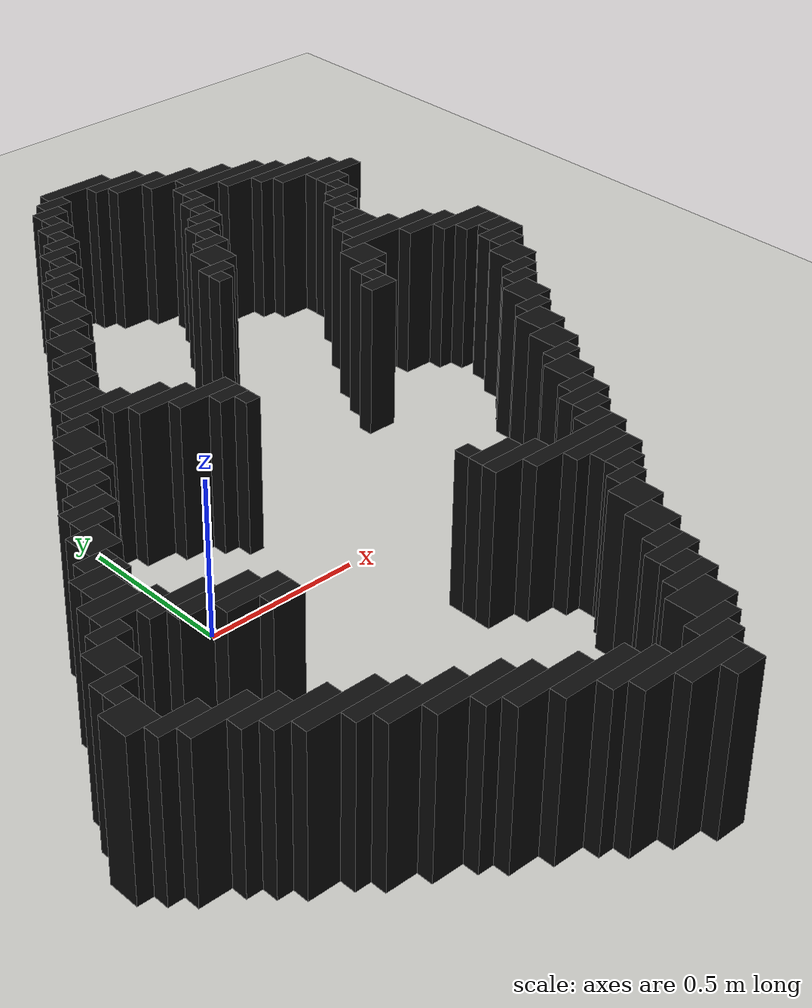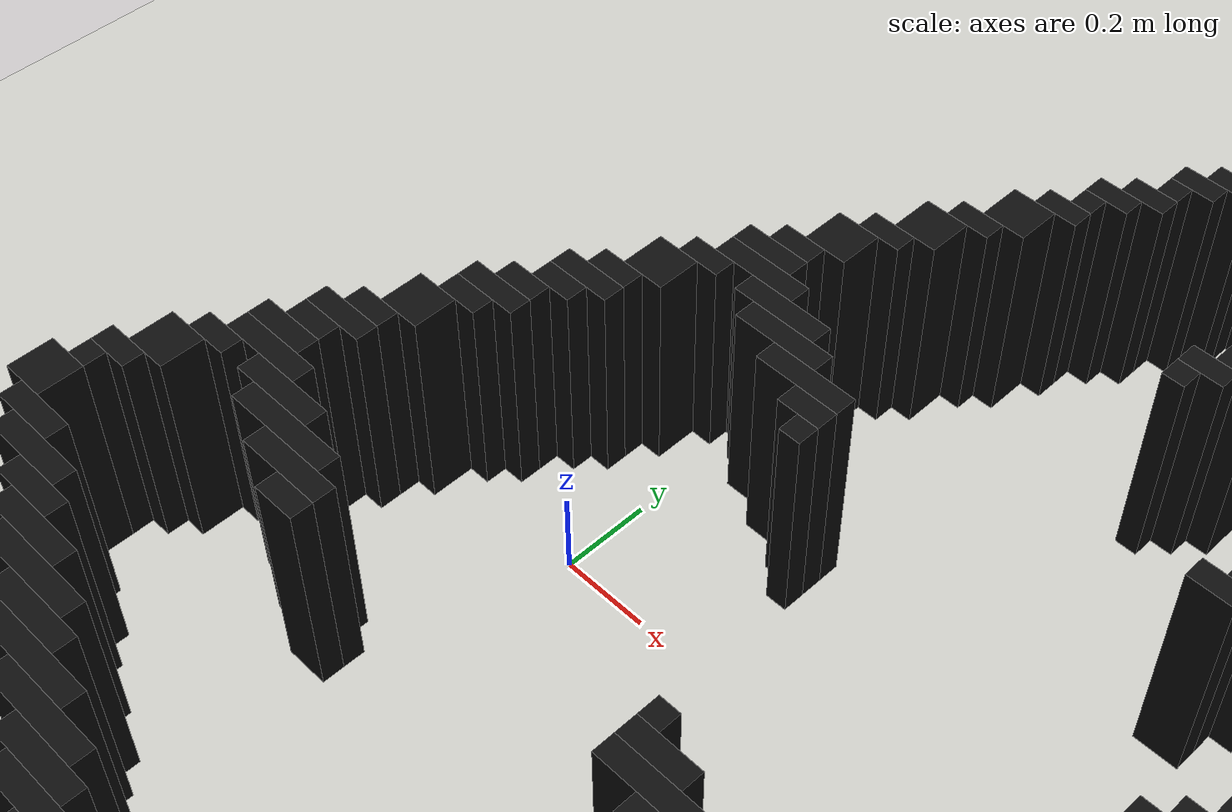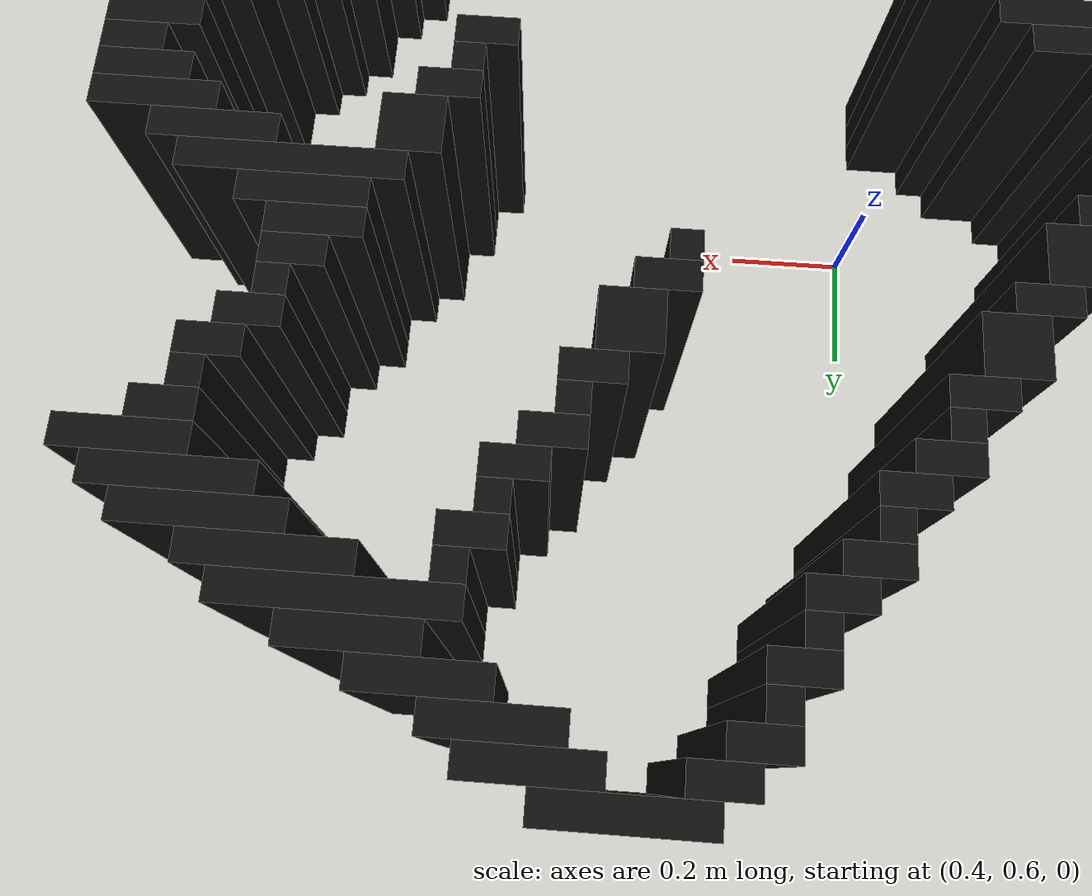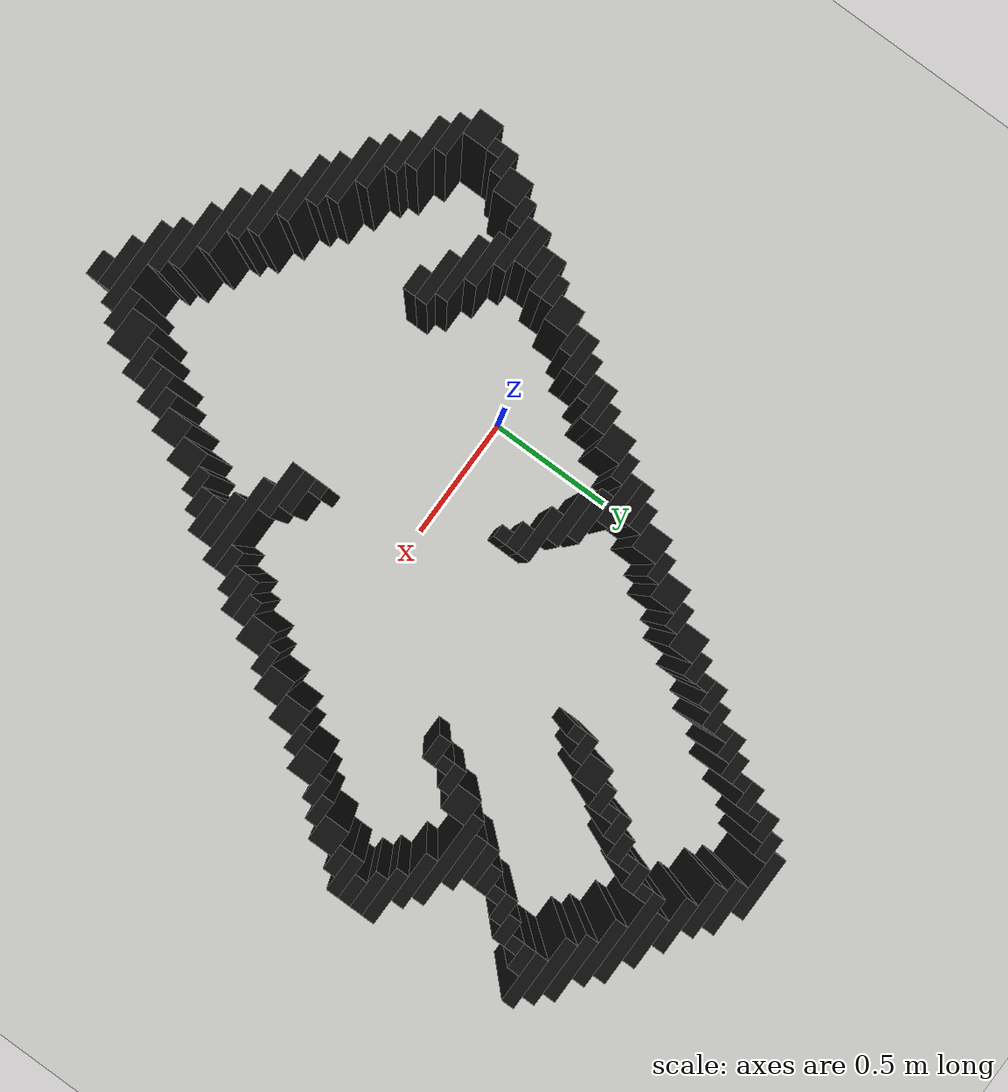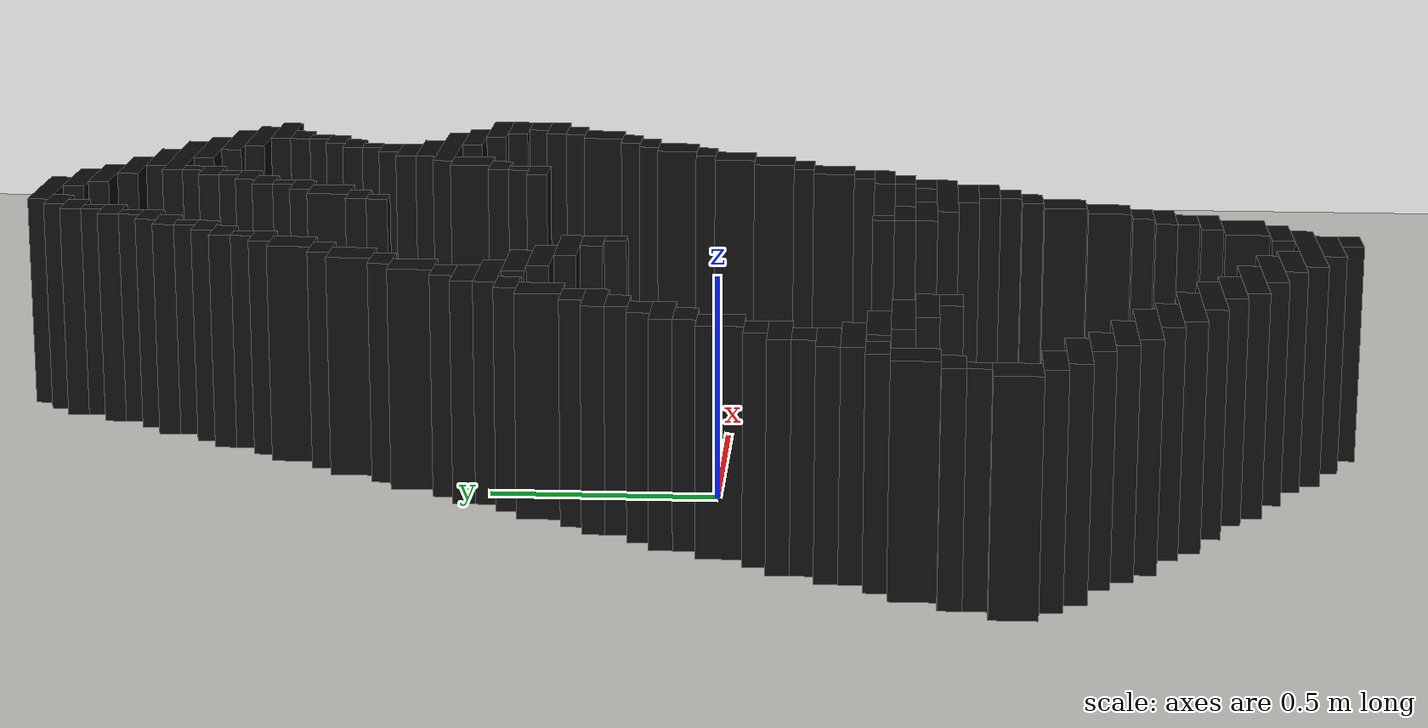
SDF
<sdf version="1.9">
 <world name="two_tb4_lab">
  <model name="ground_plane">
   <static>true</static>
   <link name="link">
    <collision name="collision">
     <geometry><plane><normal>0 0 1</normal><size>5 5</size></plane></geometry>
    </collision>
    <visual name="visual">
     <geometry><plane><normal>0 0 1</normal><size>5 5</size></plane></geometry>
     <material><ambient>0.78 0.78 0.76 1</ambient><diffuse>0.78 0.78 0.76 1</diffuse></material>
    </visual>
   </link>
  </model>
  <model name="lab_occupied_cells">
   <static>true</static>
   <link name="lab_occupied_cells_000">
    <pose>0.425 -1.400 0.250 0 0 0</pose>
    <collision name="collision"><geometry><box><size>0.100 0.050 0.500</size></box></geometry></collision>
    <visual name="visual">
     <geometry><box><size>0.100 0.050 0.500</size></box></geometry>
     <material><ambient>0.05 0.05 0.05 1</ambient><diffuse>0.05 0.05 0.05 1</diffuse></material>
    </visual>
   </link>
   <link name="lab_occupied_cells_001">
    <pose>0.375 -1.350 0.250 0 0 0</pose>
    <collision name="collision"><geometry><box><size>0.200 0.050 0.500</size></box></geometry></collision>
    <visual name="visual">
     <geometry><box><size>0.200 0.050 0.500</size></box></geometry>
     <material><ambient>0.05 0.05 0.05 1</ambient><diffuse>0.05 0.05 0.05 1</diffuse></material>
    </visual>
   </link>
   <link name="lab_occupied_cells_002">
    <pose>0.350 -1.300 0.250 0 0 0</pose>
    <collision name="collision"><geometry><box><size>0.350 0.050 0.500</size></box></geometry></collision>
    <visual name="visual">
     <geometry><box><size>0.350 0.050 0.500</size></box></geometry>
     <material><ambient>0.05 0.05 0.05 1</ambient><diffuse>0.05 0.05 0.05 1</diffuse></material>
    </visual>
   </link>
   <link name="lab_occupied_cells_003">
    <pose>0.225 -1.250 0.250 0 0 0</pose>
    <collision name="collision"><geometry><box><size>0.200 0.050 0.500</size></box></geometry></collision>
    <visual name="visual">
     <geometry><box><size>0.200 0.050 0.500</size></box></geometry>
     <material><ambient>0.05 0.05 0.05 1</ambient><diffuse>0.05 0.05 0.05 1</diffuse></material>
    </visual>
   </link>
   <link name="lab_occupied_cells_004">
    <pose>0.500 -1.250 0.250 0 0 0</pose>
    <collision name="collision"><geometry><box><size>0.150 0.050 0.500</size></box></geometry></collision>
    <visual name="visual">
     <geometry><box><size>0.150 0.050 0.500</size></box></geometry>
     <material><ambient>0.05 0.05 0.05 1</ambient><diffuse>0.05 0.05 0.05 1</diffuse></material>
    </visual>
   </link>
   <link name="lab_occupied_cells_005">
    <pose>0.150 -1.200 0.250 0 0 0</pose>
    <collision name="collision"><geometry><box><size>0.250 0.050 0.500</size></box></geometry></collision>
    <visual name="visual">
     <geometry><box><size>0.250 0.050 0.500</size></box></geometry>
     <material><ambient>0.05 0.05 0.05 1</ambient><diffuse>0.05 0.05 0.05 1</diffuse></material>
    </visual>
   </link>
   <link name="lab_occupied_cells_006">
    <pose>0.550 -1.175 0.250 0 0 0</pose>
    <collision name="collision"><geometry><box><size>0.150 0.100 0.500</size></box></geometry></collision>
    <visual name="visual">
     <geometry><box><size>0.150 0.100 0.500</size></box></geometry>
     <material><ambient>0.05 0.05 0.05 1</ambient><diffuse>0.05 0.05 0.05 1</diffuse></material>
    </visual>
   </link>
   <link name="lab_occupied_cells_007">
    <pose>0.050 -1.150 0.250 0 0 0</pose>
    <collision name="collision"><geometry><box><size>0.250 0.050 0.500</size></box></geometry></collision>
    <visual name="visual">
     <geometry><box><size>0.250 0.050 0.500</size></box></geometry>
     <material><ambient>0.05 0.05 0.05 1</ambient><diffuse>0.05 0.05 0.05 1</diffuse></material>
    </visual>
   </link>
   <link name="lab_occupied_cells_008">
    <pose>-0.025 -1.100 0.250 0 0 0</pose>
    <collision name="collision"><geometry><box><size>0.200 0.050 0.500</size></box></geometry></collision>
    <visual name="visual">
     <geometry><box><size>0.200 0.050 0.500</size></box></geometry>
     <material><ambient>0.05 0.05 0.05 1</ambient><diffuse>0.05 0.05 0.05 1</diffuse></material>
    </visual>
   </link>
   <link name="lab_occupied_cells_009">
    <pose>0.600 -1.100 0.250 0 0 0</pose>
    <collision name="collision"><geometry><box><size>0.150 0.050 0.500</size></box></geometry></collision>
    <visual name="visual">
     <geometry><box><size>0.150 0.050 0.500</size></box></geometry>
     <material><ambient>0.05 0.05 0.05 1</ambient><diffuse>0.05 0.05 0.05 1</diffuse></material>
    </visual>
   </link>
   <link name="lab_occupied_cells_010">
    <pose>-0.100 -1.050 0.250 0 0 0</pose>
    <collision name="collision"><geometry><box><size>0.250 0.050 0.500</size></box></geometry></collision>
    <visual name="visual">
     <geometry><box><size>0.250 0.050 0.500</size></box></geometry>
     <material><ambient>0.05 0.05 0.05 1</ambient><diffuse>0.05 0.05 0.05 1</diffuse></material>
    </visual>
   </link>
   <link name="lab_occupied_cells_011">
    <pose>0.625 -1.050 0.250 0 0 0</pose>
    <collision name="collision"><geometry><box><size>0.100 0.050 0.500</size></box></geometry></collision>
    <visual name="visual">
     <geometry><box><size>0.100 0.050 0.500</size></box></geometry>
     <material><ambient>0.05 0.05 0.05 1</ambient><diffuse>0.05 0.05 0.05 1</diffuse></material>
    </visual>
   </link>
   <link name="lab_occupied_cells_012">
    <pose>-0.200 -1.000 0.250 0 0 0</pose>
    <collision name="collision"><geometry><box><size>0.250 0.050 0.500</size></box></geometry></collision>
    <visual name="visual">
     <geometry><box><size>0.250 0.050 0.500</size></box></geometry>
     <material><ambient>0.05 0.05 0.05 1</ambient><diffuse>0.05 0.05 0.05 1</diffuse></material>
    </visual>
   </link>
   <link name="lab_occupied_cells_013">
    <pose>0.650 -1.000 0.250 0 0 0</pose>
    <collision name="collision"><geometry><box><size>0.150 0.050 0.500</size></box></geometry></collision>
    <visual name="visual">
     <geometry><box><size>0.150 0.050 0.500</size></box></geometry>
     <material><ambient>0.05 0.05 0.05 1</ambient><diffuse>0.05 0.05 0.05 1</diffuse></material>
    </visual>
   </link>
   <link name="lab_occupied_cells_014">
    <pose>-0.275 -0.950 0.250 0 0 0</pose>
    <collision name="collision"><geometry><box><size>0.200 0.050 0.500</size></box></geometry></collision>
    <visual name="visual">
     <geometry><box><size>0.200 0.050 0.500</size></box></geometry>
     <material><ambient>0.05 0.05 0.05 1</ambient><diffuse>0.05 0.05 0.05 1</diffuse></material>
    </visual>
   </link>
   <link name="lab_occupied_cells_015">
    <pose>0.675 -0.950 0.250 0 0 0</pose>
    <collision name="collision"><geometry><box><size>0.100 0.050 0.500</size></box></geometry></collision>
    <visual name="visual">
     <geometry><box><size>0.100 0.050 0.500</size></box></geometry>
     <material><ambient>0.05 0.05 0.05 1</ambient><diffuse>0.05 0.05 0.05 1</diffuse></material>
    </visual>
   </link>
   <link name="lab_occupied_cells_016">
    <pose>-0.350 -0.900 0.250 0 0 0</pose>
    <collision name="collision"><geometry><box><size>0.250 0.050 0.500</size></box></geometry></collision>
    <visual name="visual">
     <geometry><box><size>0.250 0.050 0.500</size></box></geometry>
     <material><ambient>0.05 0.05 0.05 1</ambient><diffuse>0.05 0.05 0.05 1</diffuse></material>
    </visual>
   </link>
   <link name="lab_occupied_cells_017">
    <pose>0.725 -0.875 0.250 0 0 0</pose>
    <collision name="collision"><geometry><box><size>0.100 0.100 0.500</size></box></geometry></collision>
    <visual name="visual">
     <geometry><box><size>0.100 0.100 0.500</size></box></geometry>
     <material><ambient>0.05 0.05 0.05 1</ambient><diffuse>0.05 0.05 0.05 1</diffuse></material>
    </visual>
   </link>
   <link name="lab_occupied_cells_018">
    <pose>-0.425 -0.850 0.250 0 0 0</pose>
    <collision name="collision"><geometry><box><size>0.200 0.050 0.500</size></box></geometry></collision>
    <visual name="visual">
     <geometry><box><size>0.200 0.050 0.500</size></box></geometry>
     <material><ambient>0.05 0.05 0.05 1</ambient><diffuse>0.05 0.05 0.05 1</diffuse></material>
    </visual>
   </link>
   <link name="lab_occupied_cells_019">
    <pose>-0.500 -0.800 0.250 0 0 0</pose>
    <collision name="collision"><geometry><box><size>0.150 0.050 0.500</size></box></geometry></collision>
    <visual name="visual">
     <geometry><box><size>0.150 0.050 0.500</size></box></geometry>
     <material><ambient>0.05 0.05 0.05 1</ambient><diffuse>0.05 0.05 0.05 1</diffuse></material>
    </visual>
   </link>
   <link name="lab_occupied_cells_020">
    <pose>0.775 -0.775 0.250 0 0 0</pose>
    <collision name="collision"><geometry><box><size>0.100 0.100 0.500</size></box></geometry></collision>
    <visual name="visual">
     <geometry><box><size>0.100 0.100 0.500</size></box></geometry>
     <material><ambient>0.05 0.05 0.05 1</ambient><diffuse>0.05 0.05 0.05 1</diffuse></material>
    </visual>
   </link>
   <link name="lab_occupied_cells_021">
    <pose>-0.575 -0.750 0.250 0 0 0</pose>
    <collision name="collision"><geometry><box><size>0.200 0.050 0.500</size></box></geometry></collision>
    <visual name="visual">
     <geometry><box><size>0.200 0.050 0.500</size></box></geometry>
     <material><ambient>0.05 0.05 0.05 1</ambient><diffuse>0.05 0.05 0.05 1</diffuse></material>
    </visual>
   </link>
   <link name="lab_occupied_cells_022">
    <pose>-0.650 -0.700 0.250 0 0 0</pose>
    <collision name="collision"><geometry><box><size>0.150 0.050 0.500</size></box></geometry></collision>
    <visual name="visual">
     <geometry><box><size>0.150 0.050 0.500</size></box></geometry>
     <material><ambient>0.05 0.05 0.05 1</ambient><diffuse>0.05 0.05 0.05 1</diffuse></material>
    </visual>
   </link>
   <link name="lab_occupied_cells_023">
    <pose>0.825 -0.700 0.250 0 0 0</pose>
    <collision name="collision"><geometry><box><size>0.100 0.050 0.500</size></box></geometry></collision>
    <visual name="visual">
     <geometry><box><size>0.100 0.050 0.500</size></box></geometry>
     <material><ambient>0.05 0.05 0.05 1</ambient><diffuse>0.05 0.05 0.05 1</diffuse></material>
    </visual>
   </link>
   <link name="lab_occupied_cells_024">
    <pose>0.875 -0.650 0.250 0 0 0</pose>
    <collision name="collision"><geometry><box><size>0.100 0.050 0.500</size></box></geometry></collision>
    <visual name="visual">
     <geometry><box><size>0.100 0.050 0.500</size></box></geometry>
     <material><ambient>0.05 0.05 0.05 1</ambient><diffuse>0.05 0.05 0.05 1</diffuse></material>
    </visual>
   </link>
   <link name="lab_occupied_cells_025">
    <pose>-0.725 -0.625 0.250 0 0 0</pose>
    <collision name="collision"><geometry><box><size>0.100 0.100 0.500</size></box></geometry></collision>
    <visual name="visual">
     <geometry><box><size>0.100 0.100 0.500</size></box></geometry>
     <material><ambient>0.05 0.05 0.05 1</ambient><diffuse>0.05 0.05 0.05 1</diffuse></material>
    </visual>
   </link>
   <link name="lab_occupied_cells_026">
    <pose>0.900 -0.600 0.250 0 0 0</pose>
    <collision name="collision"><geometry><box><size>0.150 0.050 0.500</size></box></geometry></collision>
    <visual name="visual">
     <geometry><box><size>0.150 0.050 0.500</size></box></geometry>
     <material><ambient>0.05 0.05 0.05 1</ambient><diffuse>0.05 0.05 0.05 1</diffuse></material>
    </visual>
   </link>
   <link name="lab_occupied_cells_027">
    <pose>-0.700 -0.550 0.250 0 0 0</pose>
    <collision name="collision"><geometry><box><size>0.050 0.050 0.500</size></box></geometry></collision>
    <visual name="visual">
     <geometry><box><size>0.050 0.050 0.500</size></box></geometry>
     <material><ambient>0.05 0.05 0.05 1</ambient><diffuse>0.05 0.05 0.05 1</diffuse></material>
    </visual>
   </link>
   <link name="lab_occupied_cells_028">
    <pose>0.875 -0.550 0.250 0 0 0</pose>
    <collision name="collision"><geometry><box><size>0.200 0.050 0.500</size></box></geometry></collision>
    <visual name="visual">
     <geometry><box><size>0.200 0.050 0.500</size></box></geometry>
     <material><ambient>0.05 0.05 0.05 1</ambient><diffuse>0.05 0.05 0.05 1</diffuse></material>
    </visual>
   </link>
   <link name="lab_occupied_cells_029">
    <pose>-0.675 -0.500 0.250 0 0 0</pose>
    <collision name="collision"><geometry><box><size>0.100 0.050 0.500</size></box></geometry></collision>
    <visual name="visual">
     <geometry><box><size>0.100 0.050 0.500</size></box></geometry>
     <material><ambient>0.05 0.05 0.05 1</ambient><diffuse>0.05 0.05 0.05 1</diffuse></material>
    </visual>
   </link>
   <link name="lab_occupied_cells_030">
    <pose>-0.175 -0.500 0.250 0 0 0</pose>
    <collision name="collision"><geometry><box><size>0.100 0.050 0.500</size></box></geometry></collision>
    <visual name="visual">
     <geometry><box><size>0.100 0.050 0.500</size></box></geometry>
     <material><ambient>0.05 0.05 0.05 1</ambient><diffuse>0.05 0.05 0.05 1</diffuse></material>
    </visual>
   </link>
   <link name="lab_occupied_cells_031">
    <pose>0.850 -0.500 0.250 0 0 0</pose>
    <collision name="collision"><geometry><box><size>0.350 0.050 0.500</size></box></geometry></collision>
    <visual name="visual">
     <geometry><box><size>0.350 0.050 0.500</size></box></geometry>
     <material><ambient>0.05 0.05 0.05 1</ambient><diffuse>0.05 0.05 0.05 1</diffuse></material>
    </visual>
   </link>
   <link name="lab_occupied_cells_032">
    <pose>-0.225 -0.450 0.250 0 0 0</pose>
    <collision name="collision"><geometry><box><size>0.200 0.050 0.500</size></box></geometry></collision>
    <visual name="visual">
     <geometry><box><size>0.200 0.050 0.500</size></box></geometry>
     <material><ambient>0.05 0.05 0.05 1</ambient><diffuse>0.05 0.05 0.05 1</diffuse></material>
    </visual>
   </link>
   <link name="lab_occupied_cells_033">
    <pose>0.675 -0.450 0.250 0 0 0</pose>
    <collision name="collision"><geometry><box><size>0.200 0.050 0.500</size></box></geometry></collision>
    <visual name="visual">
     <geometry><box><size>0.200 0.050 0.500</size></box></geometry>
     <material><ambient>0.05 0.05 0.05 1</ambient><diffuse>0.05 0.05 0.05 1</diffuse></material>
    </visual>
   </link>
   <link name="lab_occupied_cells_034">
    <pose>0.975 -0.450 0.250 0 0 0</pose>
    <collision name="collision"><geometry><box><size>0.100 0.050 0.500</size></box></geometry></collision>
    <visual name="visual">
     <geometry><box><size>0.100 0.050 0.500</size></box></geometry>
     <material><ambient>0.05 0.05 0.05 1</ambient><diffuse>0.05 0.05 0.05 1</diffuse></material>
    </visual>
   </link>
   <link name="lab_occupied_cells_035">
    <pose>-0.625 -0.425 0.250 0 0 0</pose>
    <collision name="collision"><geometry><box><size>0.100 0.100 0.500</size></box></geometry></collision>
    <visual name="visual">
     <geometry><box><size>0.100 0.100 0.500</size></box></geometry>
     <material><ambient>0.05 0.05 0.05 1</ambient><diffuse>0.05 0.05 0.05 1</diffuse></material>
    </visual>
   </link>
   <link name="lab_occupied_cells_036">
    <pose>-0.300 -0.400 0.250 0 0 0</pose>
    <collision name="collision"><geometry><box><size>0.250 0.050 0.500</size></box></geometry></collision>
    <visual name="visual">
     <geometry><box><size>0.250 0.050 0.500</size></box></geometry>
     <material><ambient>0.05 0.05 0.05 1</ambient><diffuse>0.05 0.05 0.05 1</diffuse></material>
    </visual>
   </link>
   <link name="lab_occupied_cells_037">
    <pose>0.650 -0.400 0.250 0 0 0</pose>
    <collision name="collision"><geometry><box><size>0.150 0.050 0.500</size></box></geometry></collision>
    <visual name="visual">
     <geometry><box><size>0.150 0.050 0.500</size></box></geometry>
     <material><ambient>0.05 0.05 0.05 1</ambient><diffuse>0.05 0.05 0.05 1</diffuse></material>
    </visual>
   </link>
   <link name="lab_occupied_cells_038">
    <pose>1.025 -0.400 0.250 0 0 0</pose>
    <collision name="collision"><geometry><box><size>0.100 0.050 0.500</size></box></geometry></collision>
    <visual name="visual">
     <geometry><box><size>0.100 0.050 0.500</size></box></geometry>
     <material><ambient>0.05 0.05 0.05 1</ambient><diffuse>0.05 0.05 0.05 1</diffuse></material>
    </visual>
   </link>
   <link name="lab_occupied_cells_039">
    <pose>-0.575 -0.350 0.250 0 0 0</pose>
    <collision name="collision"><geometry><box><size>0.100 0.050 0.500</size></box></geometry></collision>
    <visual name="visual">
     <geometry><box><size>0.100 0.050 0.500</size></box></geometry>
     <material><ambient>0.05 0.05 0.05 1</ambient><diffuse>0.05 0.05 0.05 1</diffuse></material>
    </visual>
   </link>
   <link name="lab_occupied_cells_040">
    <pose>-0.375 -0.350 0.250 0 0 0</pose>
    <collision name="collision"><geometry><box><size>0.200 0.050 0.500</size></box></geometry></collision>
    <visual name="visual">
     <geometry><box><size>0.200 0.050 0.500</size></box></geometry>
     <material><ambient>0.05 0.05 0.05 1</ambient><diffuse>0.05 0.05 0.05 1</diffuse></material>
    </visual>
   </link>
   <link name="lab_occupied_cells_041">
    <pose>0.600 -0.350 0.250 0 0 0</pose>
    <collision name="collision"><geometry><box><size>0.050 0.050 0.500</size></box></geometry></collision>
    <visual name="visual">
     <geometry><box><size>0.050 0.050 0.500</size></box></geometry>
     <material><ambient>0.05 0.05 0.05 1</ambient><diffuse>0.05 0.05 0.05 1</diffuse></material>
    </visual>
   </link>
   <link name="lab_occupied_cells_042">
    <pose>1.050 -0.350 0.250 0 0 0</pose>
    <collision name="collision"><geometry><box><size>0.150 0.050 0.500</size></box></geometry></collision>
    <visual name="visual">
     <geometry><box><size>0.150 0.050 0.500</size></box></geometry>
     <material><ambient>0.05 0.05 0.05 1</ambient><diffuse>0.05 0.05 0.05 1</diffuse></material>
    </visual>
   </link>
   <link name="lab_occupied_cells_043">
    <pose>-0.475 -0.300 0.250 0 0 0</pose>
    <collision name="collision"><geometry><box><size>0.200 0.050 0.500</size></box></geometry></collision>
    <visual name="visual">
     <geometry><box><size>0.200 0.050 0.500</size></box></geometry>
     <material><ambient>0.05 0.05 0.05 1</ambient><diffuse>0.05 0.05 0.05 1</diffuse></material>
    </visual>
   </link>
   <link name="lab_occupied_cells_044">
    <pose>1.075 -0.300 0.250 0 0 0</pose>
    <collision name="collision"><geometry><box><size>0.100 0.050 0.500</size></box></geometry></collision>
    <visual name="visual">
     <geometry><box><size>0.100 0.050 0.500</size></box></geometry>
     <material><ambient>0.05 0.05 0.05 1</ambient><diffuse>0.05 0.05 0.05 1</diffuse></material>
    </visual>
   </link>
   <link name="lab_occupied_cells_045">
    <pose>-0.500 -0.250 0.250 0 0 0</pose>
    <collision name="collision"><geometry><box><size>0.150 0.050 0.500</size></box></geometry></collision>
    <visual name="visual">
     <geometry><box><size>0.150 0.050 0.500</size></box></geometry>
     <material><ambient>0.05 0.05 0.05 1</ambient><diffuse>0.05 0.05 0.05 1</diffuse></material>
    </visual>
   </link>
   <link name="lab_occupied_cells_046">
    <pose>1.125 -0.225 0.250 0 0 0</pose>
    <collision name="collision"><geometry><box><size>0.100 0.100 0.500</size></box></geometry></collision>
    <visual name="visual">
     <geometry><box><size>0.100 0.100 0.500</size></box></geometry>
     <material><ambient>0.05 0.05 0.05 1</ambient><diffuse>0.05 0.05 0.05 1</diffuse></material>
    </visual>
   </link>
   <link name="lab_occupied_cells_047">
    <pose>-0.475 -0.200 0.250 0 0 0</pose>
    <collision name="collision"><geometry><box><size>0.100 0.050 0.500</size></box></geometry></collision>
    <visual name="visual">
     <geometry><box><size>0.100 0.050 0.500</size></box></geometry>
     <material><ambient>0.05 0.05 0.05 1</ambient><diffuse>0.05 0.05 0.05 1</diffuse></material>
    </visual>
   </link>
   <link name="lab_occupied_cells_048">
    <pose>-0.450 -0.150 0.250 0 0 0</pose>
    <collision name="collision"><geometry><box><size>0.150 0.050 0.500</size></box></geometry></collision>
    <visual name="visual">
     <geometry><box><size>0.150 0.050 0.500</size></box></geometry>
     <material><ambient>0.05 0.05 0.05 1</ambient><diffuse>0.05 0.05 0.05 1</diffuse></material>
    </visual>
   </link>
   <link name="lab_occupied_cells_049">
    <pose>1.175 -0.150 0.250 0 0 0</pose>
    <collision name="collision"><geometry><box><size>0.100 0.050 0.500</size></box></geometry></collision>
    <visual name="visual">
     <geometry><box><size>0.100 0.050 0.500</size></box></geometry>
     <material><ambient>0.05 0.05 0.05 1</ambient><diffuse>0.05 0.05 0.05 1</diffuse></material>
    </visual>
   </link>
   <link name="lab_occupied_cells_050">
    <pose>-0.425 -0.100 0.250 0 0 0</pose>
    <collision name="collision"><geometry><box><size>0.100 0.050 0.500</size></box></geometry></collision>
    <visual name="visual">
     <geometry><box><size>0.100 0.050 0.500</size></box></geometry>
     <material><ambient>0.05 0.05 0.05 1</ambient><diffuse>0.05 0.05 0.05 1</diffuse></material>
    </visual>
   </link>
   <link name="lab_occupied_cells_051">
    <pose>1.225 -0.075 0.250 0 0 0</pose>
    <collision name="collision"><geometry><box><size>0.100 0.100 0.500</size></box></geometry></collision>
    <visual name="visual">
     <geometry><box><size>0.100 0.100 0.500</size></box></geometry>
     <material><ambient>0.05 0.05 0.05 1</ambient><diffuse>0.05 0.05 0.05 1</diffuse></material>
    </visual>
   </link>
   <link name="lab_occupied_cells_052">
    <pose>-0.375 -0.025 0.250 0 0 0</pose>
    <collision name="collision"><geometry><box><size>0.100 0.100 0.500</size></box></geometry></collision>
    <visual name="visual">
     <geometry><box><size>0.100 0.100 0.500</size></box></geometry>
     <material><ambient>0.05 0.05 0.05 1</ambient><diffuse>0.05 0.05 0.05 1</diffuse></material>
    </visual>
   </link>
   <link name="lab_occupied_cells_053">
    <pose>1.275 0.025 0.250 0 0 0</pose>
    <collision name="collision"><geometry><box><size>0.100 0.100 0.500</size></box></geometry></collision>
    <visual name="visual">
     <geometry><box><size>0.100 0.100 0.500</size></box></geometry>
     <material><ambient>0.05 0.05 0.05 1</ambient><diffuse>0.05 0.05 0.05 1</diffuse></material>
    </visual>
   </link>
   <link name="lab_occupied_cells_054">
    <pose>-0.325 0.050 0.250 0 0 0</pose>
    <collision name="collision"><geometry><box><size>0.100 0.050 0.500</size></box></geometry></collision>
    <visual name="visual">
     <geometry><box><size>0.100 0.050 0.500</size></box></geometry>
     <material><ambient>0.05 0.05 0.05 1</ambient><diffuse>0.05 0.05 0.05 1</diffuse></material>
    </visual>
   </link>
   <link name="lab_occupied_cells_055">
    <pose>-0.300 0.100 0.250 0 0 0</pose>
    <collision name="collision"><geometry><box><size>0.150 0.050 0.500</size></box></geometry></collision>
    <visual name="visual">
     <geometry><box><size>0.150 0.050 0.500</size></box></geometry>
     <material><ambient>0.05 0.05 0.05 1</ambient><diffuse>0.05 0.05 0.05 1</diffuse></material>
    </visual>
   </link>
   <link name="lab_occupied_cells_056">
    <pose>1.325 0.100 0.250 0 0 0</pose>
    <collision name="collision"><geometry><box><size>0.100 0.050 0.500</size></box></geometry></collision>
    <visual name="visual">
     <geometry><box><size>0.100 0.050 0.500</size></box></geometry>
     <material><ambient>0.05 0.05 0.05 1</ambient><diffuse>0.05 0.05 0.05 1</diffuse></material>
    </visual>
   </link>
   <link name="lab_occupied_cells_057">
    <pose>-0.275 0.150 0.250 0 0 0</pose>
    <collision name="collision"><geometry><box><size>0.100 0.050 0.500</size></box></geometry></collision>
    <visual name="visual">
     <geometry><box><size>0.100 0.050 0.500</size></box></geometry>
     <material><ambient>0.05 0.05 0.05 1</ambient><diffuse>0.05 0.05 0.05 1</diffuse></material>
    </visual>
   </link>
   <link name="lab_occupied_cells_058">
    <pose>1.375 0.175 0.250 0 0 0</pose>
    <collision name="collision"><geometry><box><size>0.100 0.100 0.500</size></box></geometry></collision>
    <visual name="visual">
     <geometry><box><size>0.100 0.100 0.500</size></box></geometry>
     <material><ambient>0.05 0.05 0.05 1</ambient><diffuse>0.05 0.05 0.05 1</diffuse></material>
    </visual>
   </link>
   <link name="lab_occupied_cells_059">
    <pose>-0.225 0.200 0.250 0 0 0</pose>
    <collision name="collision"><geometry><box><size>0.100 0.050 0.500</size></box></geometry></collision>
    <visual name="visual">
     <geometry><box><size>0.100 0.050 0.500</size></box></geometry>
     <material><ambient>0.05 0.05 0.05 1</ambient><diffuse>0.05 0.05 0.05 1</diffuse></material>
    </visual>
   </link>
   <link name="lab_occupied_cells_060">
    <pose>-0.200 0.250 0.250 0 0 0</pose>
    <collision name="collision"><geometry><box><size>0.150 0.050 0.500</size></box></geometry></collision>
    <visual name="visual">
     <geometry><box><size>0.150 0.050 0.500</size></box></geometry>
     <material><ambient>0.05 0.05 0.05 1</ambient><diffuse>0.05 0.05 0.05 1</diffuse></material>
    </visual>
   </link>
   <link name="lab_occupied_cells_061">
    <pose>0.350 0.250 0.250 0 0 0</pose>
    <collision name="collision"><geometry><box><size>0.050 0.050 0.500</size></box></geometry></collision>
    <visual name="visual">
     <geometry><box><size>0.050 0.050 0.500</size></box></geometry>
     <material><ambient>0.05 0.05 0.05 1</ambient><diffuse>0.05 0.05 0.05 1</diffuse></material>
    </visual>
   </link>
   <link name="lab_occupied_cells_062">
    <pose>1.425 0.250 0.250 0 0 0</pose>
    <collision name="collision"><geometry><box><size>0.100 0.050 0.500</size></box></geometry></collision>
    <visual name="visual">
     <geometry><box><size>0.100 0.050 0.500</size></box></geometry>
     <material><ambient>0.05 0.05 0.05 1</ambient><diffuse>0.05 0.05 0.05 1</diffuse></material>
    </visual>
   </link>
   <link name="lab_occupied_cells_063">
    <pose>-0.175 0.300 0.250 0 0 0</pose>
    <collision name="collision"><geometry><box><size>0.100 0.050 0.500</size></box></geometry></collision>
    <visual name="visual">
     <geometry><box><size>0.100 0.050 0.500</size></box></geometry>
     <material><ambient>0.05 0.05 0.05 1</ambient><diffuse>0.05 0.05 0.05 1</diffuse></material>
    </visual>
   </link>
   <link name="lab_occupied_cells_064">
    <pose>0.325 0.300 0.250 0 0 0</pose>
    <collision name="collision"><geometry><box><size>0.100 0.050 0.500</size></box></geometry></collision>
    <visual name="visual">
     <geometry><box><size>0.100 0.050 0.500</size></box></geometry>
     <material><ambient>0.05 0.05 0.05 1</ambient><diffuse>0.05 0.05 0.05 1</diffuse></material>
    </visual>
   </link>
   <link name="lab_occupied_cells_065">
    <pose>1.475 0.300 0.250 0 0 0</pose>
    <collision name="collision"><geometry><box><size>0.100 0.050 0.500</size></box></geometry></collision>
    <visual name="visual">
     <geometry><box><size>0.100 0.050 0.500</size></box></geometry>
     <material><ambient>0.05 0.05 0.05 1</ambient><diffuse>0.05 0.05 0.05 1</diffuse></material>
    </visual>
   </link>
   <link name="lab_occupied_cells_066">
    <pose>0.275 0.350 0.250 0 0 0</pose>
    <collision name="collision"><geometry><box><size>0.200 0.050 0.500</size></box></geometry></collision>
    <visual name="visual">
     <geometry><box><size>0.200 0.050 0.500</size></box></geometry>
     <material><ambient>0.05 0.05 0.05 1</ambient><diffuse>0.05 0.05 0.05 1</diffuse></material>
    </visual>
   </link>
   <link name="lab_occupied_cells_067">
    <pose>-0.125 0.375 0.250 0 0 0</pose>
    <collision name="collision"><geometry><box><size>0.100 0.100 0.500</size></box></geometry></collision>
    <visual name="visual">
     <geometry><box><size>0.100 0.100 0.500</size></box></geometry>
     <material><ambient>0.05 0.05 0.05 1</ambient><diffuse>0.05 0.05 0.05 1</diffuse></material>
    </visual>
   </link>
   <link name="lab_occupied_cells_068">
    <pose>1.525 0.375 0.250 0 0 0</pose>
    <collision name="collision"><geometry><box><size>0.100 0.100 0.500</size></box></geometry></collision>
    <visual name="visual">
     <geometry><box><size>0.100 0.100 0.500</size></box></geometry>
     <material><ambient>0.05 0.05 0.05 1</ambient><diffuse>0.05 0.05 0.05 1</diffuse></material>
    </visual>
   </link>
   <link name="lab_occupied_cells_069">
    <pose>0.175 0.400 0.250 0 0 0</pose>
    <collision name="collision"><geometry><box><size>0.200 0.050 0.500</size></box></geometry></collision>
    <visual name="visual">
     <geometry><box><size>0.200 0.050 0.500</size></box></geometry>
     <material><ambient>0.05 0.05 0.05 1</ambient><diffuse>0.05 0.05 0.05 1</diffuse></material>
    </visual>
   </link>
   <link name="lab_occupied_cells_070">
    <pose>-0.075 0.450 0.250 0 0 0</pose>
    <collision name="collision"><geometry><box><size>0.100 0.050 0.500</size></box></geometry></collision>
    <visual name="visual">
     <geometry><box><size>0.100 0.050 0.500</size></box></geometry>
     <material><ambient>0.05 0.05 0.05 1</ambient><diffuse>0.05 0.05 0.05 1</diffuse></material>
    </visual>
   </link>
   <link name="lab_occupied_cells_071">
    <pose>0.125 0.450 0.250 0 0 0</pose>
    <collision name="collision"><geometry><box><size>0.200 0.050 0.500</size></box></geometry></collision>
    <visual name="visual">
     <geometry><box><size>0.200 0.050 0.500</size></box></geometry>
     <material><ambient>0.05 0.05 0.05 1</ambient><diffuse>0.05 0.05 0.05 1</diffuse></material>
    </visual>
   </link>
   <link name="lab_occupied_cells_072">
    <pose>1.575 0.450 0.250 0 0 0</pose>
    <collision name="collision"><geometry><box><size>0.100 0.050 0.500</size></box></geometry></collision>
    <visual name="visual">
     <geometry><box><size>0.100 0.050 0.500</size></box></geometry>
     <material><ambient>0.05 0.05 0.05 1</ambient><diffuse>0.05 0.05 0.05 1</diffuse></material>
    </visual>
   </link>
   <link name="lab_occupied_cells_073">
    <pose>0.025 0.500 0.250 0 0 0</pose>
    <collision name="collision"><geometry><box><size>0.200 0.050 0.500</size></box></geometry></collision>
    <visual name="visual">
     <geometry><box><size>0.200 0.050 0.500</size></box></geometry>
     <material><ambient>0.05 0.05 0.05 1</ambient><diffuse>0.05 0.05 0.05 1</diffuse></material>
    </visual>
   </link>
   <link name="lab_occupied_cells_074">
    <pose>1.075 0.500 0.250 0 0 0</pose>
    <collision name="collision"><geometry><box><size>0.100 0.050 0.500</size></box></geometry></collision>
    <visual name="visual">
     <geometry><box><size>0.100 0.050 0.500</size></box></geometry>
     <material><ambient>0.05 0.05 0.05 1</ambient><diffuse>0.05 0.05 0.05 1</diffuse></material>
    </visual>
   </link>
   <link name="lab_occupied_cells_075">
    <pose>1.600 0.500 0.250 0 0 0</pose>
    <collision name="collision"><geometry><box><size>0.150 0.050 0.500</size></box></geometry></collision>
    <visual name="visual">
     <geometry><box><size>0.150 0.050 0.500</size></box></geometry>
     <material><ambient>0.05 0.05 0.05 1</ambient><diffuse>0.05 0.05 0.05 1</diffuse></material>
    </visual>
   </link>
   <link name="lab_occupied_cells_076">
    <pose>0.000 0.550 0.250 0 0 0</pose>
    <collision name="collision"><geometry><box><size>0.150 0.050 0.500</size></box></geometry></collision>
    <visual name="visual">
     <geometry><box><size>0.150 0.050 0.500</size></box></geometry>
     <material><ambient>0.05 0.05 0.05 1</ambient><diffuse>0.05 0.05 0.05 1</diffuse></material>
    </visual>
   </link>
   <link name="lab_occupied_cells_077">
    <pose>1.100 0.550 0.250 0 0 0</pose>
    <collision name="collision"><geometry><box><size>0.050 0.050 0.500</size></box></geometry></collision>
    <visual name="visual">
     <geometry><box><size>0.050 0.050 0.500</size></box></geometry>
     <material><ambient>0.05 0.05 0.05 1</ambient><diffuse>0.05 0.05 0.05 1</diffuse></material>
    </visual>
   </link>
   <link name="lab_occupied_cells_078">
    <pose>1.625 0.550 0.250 0 0 0</pose>
    <collision name="collision"><geometry><box><size>0.100 0.050 0.500</size></box></geometry></collision>
    <visual name="visual">
     <geometry><box><size>0.100 0.050 0.500</size></box></geometry>
     <material><ambient>0.05 0.05 0.05 1</ambient><diffuse>0.05 0.05 0.05 1</diffuse></material>
    </visual>
   </link>
   <link name="lab_occupied_cells_079">
    <pose>0.025 0.600 0.250 0 0 0</pose>
    <collision name="collision"><geometry><box><size>0.100 0.050 0.500</size></box></geometry></collision>
    <visual name="visual">
     <geometry><box><size>0.100 0.050 0.500</size></box></geometry>
     <material><ambient>0.05 0.05 0.05 1</ambient><diffuse>0.05 0.05 0.05 1</diffuse></material>
    </visual>
   </link>
   <link name="lab_occupied_cells_080">
    <pose>1.125 0.600 0.250 0 0 0</pose>
    <collision name="collision"><geometry><box><size>0.100 0.050 0.500</size></box></geometry></collision>
    <visual name="visual">
     <geometry><box><size>0.100 0.050 0.500</size></box></geometry>
     <material><ambient>0.05 0.05 0.05 1</ambient><diffuse>0.05 0.05 0.05 1</diffuse></material>
    </visual>
   </link>
   <link name="lab_occupied_cells_081">
    <pose>1.600 0.600 0.250 0 0 0</pose>
    <collision name="collision"><geometry><box><size>0.150 0.050 0.500</size></box></geometry></collision>
    <visual name="visual">
     <geometry><box><size>0.150 0.050 0.500</size></box></geometry>
     <material><ambient>0.05 0.05 0.05 1</ambient><diffuse>0.05 0.05 0.05 1</diffuse></material>
    </visual>
   </link>
   <link name="lab_occupied_cells_082">
    <pose>1.575 0.650 0.250 0 0 0</pose>
    <collision name="collision"><geometry><box><size>0.200 0.050 0.500</size></box></geometry></collision>
    <visual name="visual">
     <geometry><box><size>0.200 0.050 0.500</size></box></geometry>
     <material><ambient>0.05 0.05 0.05 1</ambient><diffuse>0.05 0.05 0.05 1</diffuse></material>
    </visual>
   </link>
   <link name="lab_occupied_cells_083">
    <pose>0.075 0.675 0.250 0 0 0</pose>
    <collision name="collision"><geometry><box><size>0.100 0.100 0.500</size></box></geometry></collision>
    <visual name="visual">
     <geometry><box><size>0.100 0.100 0.500</size></box></geometry>
     <material><ambient>0.05 0.05 0.05 1</ambient><diffuse>0.05 0.05 0.05 1</diffuse></material>
    </visual>
   </link>
   <link name="lab_occupied_cells_084">
    <pose>1.175 0.675 0.250 0 0 0</pose>
    <collision name="collision"><geometry><box><size>0.100 0.100 0.500</size></box></geometry></collision>
    <visual name="visual">
     <geometry><box><size>0.100 0.100 0.500</size></box></geometry>
     <material><ambient>0.05 0.05 0.05 1</ambient><diffuse>0.05 0.05 0.05 1</diffuse></material>
    </visual>
   </link>
   <link name="lab_occupied_cells_085">
    <pose>1.475 0.700 0.250 0 0 0</pose>
    <collision name="collision"><geometry><box><size>0.200 0.050 0.500</size></box></geometry></collision>
    <visual name="visual">
     <geometry><box><size>0.200 0.050 0.500</size></box></geometry>
     <material><ambient>0.05 0.05 0.05 1</ambient><diffuse>0.05 0.05 0.05 1</diffuse></material>
    </visual>
   </link>
   <link name="lab_occupied_cells_086">
    <pose>0.125 0.750 0.250 0 0 0</pose>
    <collision name="collision"><geometry><box><size>0.100 0.050 0.500</size></box></geometry></collision>
    <visual name="visual">
     <geometry><box><size>0.100 0.050 0.500</size></box></geometry>
     <material><ambient>0.05 0.05 0.05 1</ambient><diffuse>0.05 0.05 0.05 1</diffuse></material>
    </visual>
   </link>
   <link name="lab_occupied_cells_087">
    <pose>1.350 0.750 0.250 0 0 0</pose>
    <collision name="collision"><geometry><box><size>0.350 0.050 0.500</size></box></geometry></collision>
    <visual name="visual">
     <geometry><box><size>0.350 0.050 0.500</size></box></geometry>
     <material><ambient>0.05 0.05 0.05 1</ambient><diffuse>0.05 0.05 0.05 1</diffuse></material>
    </visual>
   </link>
   <link name="lab_occupied_cells_088">
    <pose>1.325 0.800 0.250 0 0 0</pose>
    <collision name="collision"><geometry><box><size>0.200 0.050 0.500</size></box></geometry></collision>
    <visual name="visual">
     <geometry><box><size>0.200 0.050 0.500</size></box></geometry>
     <material><ambient>0.05 0.05 0.05 1</ambient><diffuse>0.05 0.05 0.05 1</diffuse></material>
    </visual>
   </link>
   <link name="lab_occupied_cells_089">
    <pose>0.175 0.825 0.250 0 0 0</pose>
    <collision name="collision"><geometry><box><size>0.100 0.100 0.500</size></box></geometry></collision>
    <visual name="visual">
     <geometry><box><size>0.100 0.100 0.500</size></box></geometry>
     <material><ambient>0.05 0.05 0.05 1</ambient><diffuse>0.05 0.05 0.05 1</diffuse></material>
    </visual>
   </link>
   <link name="lab_occupied_cells_090">
    <pose>0.750 0.850 0.250 0 0 0</pose>
    <collision name="collision"><geometry><box><size>0.050 0.050 0.500</size></box></geometry></collision>
    <visual name="visual">
     <geometry><box><size>0.050 0.050 0.500</size></box></geometry>
     <material><ambient>0.05 0.05 0.05 1</ambient><diffuse>0.05 0.05 0.05 1</diffuse></material>
    </visual>
   </link>
   <link name="lab_occupied_cells_091">
    <pose>1.300 0.850 0.250 0 0 0</pose>
    <collision name="collision"><geometry><box><size>0.150 0.050 0.500</size></box></geometry></collision>
    <visual name="visual">
     <geometry><box><size>0.150 0.050 0.500</size></box></geometry>
     <material><ambient>0.05 0.05 0.05 1</ambient><diffuse>0.05 0.05 0.05 1</diffuse></material>
    </visual>
   </link>
   <link name="lab_occupied_cells_092">
    <pose>0.225 0.900 0.250 0 0 0</pose>
    <collision name="collision"><geometry><box><size>0.100 0.050 0.500</size></box></geometry></collision>
    <visual name="visual">
     <geometry><box><size>0.100 0.050 0.500</size></box></geometry>
     <material><ambient>0.05 0.05 0.05 1</ambient><diffuse>0.05 0.05 0.05 1</diffuse></material>
    </visual>
   </link>
   <link name="lab_occupied_cells_093">
    <pose>0.775 0.900 0.250 0 0 0</pose>
    <collision name="collision"><geometry><box><size>0.100 0.050 0.500</size></box></geometry></collision>
    <visual name="visual">
     <geometry><box><size>0.100 0.050 0.500</size></box></geometry>
     <material><ambient>0.05 0.05 0.05 1</ambient><diffuse>0.05 0.05 0.05 1</diffuse></material>
    </visual>
   </link>
   <link name="lab_occupied_cells_094">
    <pose>1.325 0.900 0.250 0 0 0</pose>
    <collision name="collision"><geometry><box><size>0.100 0.050 0.500</size></box></geometry></collision>
    <visual name="visual">
     <geometry><box><size>0.100 0.050 0.500</size></box></geometry>
     <material><ambient>0.05 0.05 0.05 1</ambient><diffuse>0.05 0.05 0.05 1</diffuse></material>
    </visual>
   </link>
   <link name="lab_occupied_cells_095">
    <pose>1.350 0.950 0.250 0 0 0</pose>
    <collision name="collision"><geometry><box><size>0.050 0.050 0.500</size></box></geometry></collision>
    <visual name="visual">
     <geometry><box><size>0.050 0.050 0.500</size></box></geometry>
     <material><ambient>0.05 0.05 0.05 1</ambient><diffuse>0.05 0.05 0.05 1</diffuse></material>
    </visual>
   </link>
   <link name="lab_occupied_cells_096">
    <pose>0.275 0.975 0.250 0 0 0</pose>
    <collision name="collision"><geometry><box><size>0.100 0.100 0.500</size></box></geometry></collision>
    <visual name="visual">
     <geometry><box><size>0.100 0.100 0.500</size></box></geometry>
     <material><ambient>0.05 0.05 0.05 1</ambient><diffuse>0.05 0.05 0.05 1</diffuse></material>
    </visual>
   </link>
   <link name="lab_occupied_cells_097">
    <pose>0.825 0.975 0.250 0 0 0</pose>
    <collision name="collision"><geometry><box><size>0.100 0.100 0.500</size></box></geometry></collision>
    <visual name="visual">
     <geometry><box><size>0.100 0.100 0.500</size></box></geometry>
     <material><ambient>0.05 0.05 0.05 1</ambient><diffuse>0.05 0.05 0.05 1</diffuse></material>
    </visual>
   </link>
   <link name="lab_occupied_cells_098">
    <pose>1.375 1.000 0.250 0 0 0</pose>
    <collision name="collision"><geometry><box><size>0.100 0.050 0.500</size></box></geometry></collision>
    <visual name="visual">
     <geometry><box><size>0.100 0.050 0.500</size></box></geometry>
     <material><ambient>0.05 0.05 0.05 1</ambient><diffuse>0.05 0.05 0.05 1</diffuse></material>
    </visual>
   </link>
   <link name="lab_occupied_cells_099">
    <pose>0.325 1.050 0.250 0 0 0</pose>
    <collision name="collision"><geometry><box><size>0.100 0.050 0.500</size></box></geometry></collision>
    <visual name="visual">
     <geometry><box><size>0.100 0.050 0.500</size></box></geometry>
     <material><ambient>0.05 0.05 0.05 1</ambient><diffuse>0.05 0.05 0.05 1</diffuse></material>
    </visual>
   </link>
   <link name="lab_occupied_cells_100">
    <pose>0.875 1.050 0.250 0 0 0</pose>
    <collision name="collision"><geometry><box><size>0.100 0.050 0.500</size></box></geometry></collision>
    <visual name="visual">
     <geometry><box><size>0.100 0.050 0.500</size></box></geometry>
     <material><ambient>0.05 0.05 0.05 1</ambient><diffuse>0.05 0.05 0.05 1</diffuse></material>
    </visual>
   </link>
   <link name="lab_occupied_cells_101">
    <pose>1.425 1.050 0.250 0 0 0</pose>
    <collision name="collision"><geometry><box><size>0.100 0.050 0.500</size></box></geometry></collision>
    <visual name="visual">
     <geometry><box><size>0.100 0.050 0.500</size></box></geometry>
     <material><ambient>0.05 0.05 0.05 1</ambient><diffuse>0.05 0.05 0.05 1</diffuse></material>
    </visual>
   </link>
   <link name="lab_occupied_cells_102">
    <pose>0.350 1.100 0.250 0 0 0</pose>
    <collision name="collision"><geometry><box><size>0.050 0.050 0.500</size></box></geometry></collision>
    <visual name="visual">
     <geometry><box><size>0.050 0.050 0.500</size></box></geometry>
     <material><ambient>0.05 0.05 0.05 1</ambient><diffuse>0.05 0.05 0.05 1</diffuse></material>
    </visual>
   </link>
   <link name="lab_occupied_cells_103">
    <pose>0.900 1.100 0.250 0 0 0</pose>
    <collision name="collision"><geometry><box><size>0.050 0.050 0.500</size></box></geometry></collision>
    <visual name="visual">
     <geometry><box><size>0.050 0.050 0.500</size></box></geometry>
     <material><ambient>0.05 0.05 0.05 1</ambient><diffuse>0.05 0.05 0.05 1</diffuse></material>
    </visual>
   </link>
   <link name="lab_occupied_cells_104">
    <pose>1.450 1.100 0.250 0 0 0</pose>
    <collision name="collision"><geometry><box><size>0.050 0.050 0.500</size></box></geometry></collision>
    <visual name="visual">
     <geometry><box><size>0.050 0.050 0.500</size></box></geometry>
     <material><ambient>0.05 0.05 0.05 1</ambient><diffuse>0.05 0.05 0.05 1</diffuse></material>
    </visual>
   </link>
   <link name="lab_occupied_cells_105">
    <pose>0.375 1.150 0.250 0 0 0</pose>
    <collision name="collision"><geometry><box><size>0.100 0.050 0.500</size></box></geometry></collision>
    <visual name="visual">
     <geometry><box><size>0.100 0.050 0.500</size></box></geometry>
     <material><ambient>0.05 0.05 0.05 1</ambient><diffuse>0.05 0.05 0.05 1</diffuse></material>
    </visual>
   </link>
   <link name="lab_occupied_cells_106">
    <pose>0.925 1.150 0.250 0 0 0</pose>
    <collision name="collision"><geometry><box><size>0.100 0.050 0.500</size></box></geometry></collision>
    <visual name="visual">
     <geometry><box><size>0.100 0.050 0.500</size></box></geometry>
     <material><ambient>0.05 0.05 0.05 1</ambient><diffuse>0.05 0.05 0.05 1</diffuse></material>
    </visual>
   </link>
   <link name="lab_occupied_cells_107">
    <pose>1.475 1.150 0.250 0 0 0</pose>
    <collision name="collision"><geometry><box><size>0.100 0.050 0.500</size></box></geometry></collision>
    <visual name="visual">
     <geometry><box><size>0.100 0.050 0.500</size></box></geometry>
     <material><ambient>0.05 0.05 0.05 1</ambient><diffuse>0.05 0.05 0.05 1</diffuse></material>
    </visual>
   </link>
   <link name="lab_occupied_cells_108">
    <pose>0.425 1.200 0.250 0 0 0</pose>
    <collision name="collision"><geometry><box><size>0.100 0.050 0.500</size></box></geometry></collision>
    <visual name="visual">
     <geometry><box><size>0.100 0.050 0.500</size></box></geometry>
     <material><ambient>0.05 0.05 0.05 1</ambient><diffuse>0.05 0.05 0.05 1</diffuse></material>
    </visual>
   </link>
   <link name="lab_occupied_cells_109">
    <pose>0.975 1.200 0.250 0 0 0</pose>
    <collision name="collision"><geometry><box><size>0.100 0.050 0.500</size></box></geometry></collision>
    <visual name="visual">
     <geometry><box><size>0.100 0.050 0.500</size></box></geometry>
     <material><ambient>0.05 0.05 0.05 1</ambient><diffuse>0.05 0.05 0.05 1</diffuse></material>
    </visual>
   </link>
   <link name="lab_occupied_cells_110">
    <pose>1.525 1.200 0.250 0 0 0</pose>
    <collision name="collision"><geometry><box><size>0.200 0.050 0.500</size></box></geometry></collision>
    <visual name="visual">
     <geometry><box><size>0.200 0.050 0.500</size></box></geometry>
     <material><ambient>0.05 0.05 0.05 1</ambient><diffuse>0.05 0.05 0.05 1</diffuse></material>
    </visual>
   </link>
   <link name="lab_occupied_cells_111">
    <pose>0.450 1.250 0.250 0 0 0</pose>
    <collision name="collision"><geometry><box><size>0.050 0.050 0.500</size></box></geometry></collision>
    <visual name="visual">
     <geometry><box><size>0.050 0.050 0.500</size></box></geometry>
     <material><ambient>0.05 0.05 0.05 1</ambient><diffuse>0.05 0.05 0.05 1</diffuse></material>
    </visual>
   </link>
   <link name="lab_occupied_cells_112">
    <pose>1.000 1.250 0.250 0 0 0</pose>
    <collision name="collision"><geometry><box><size>0.050 0.050 0.500</size></box></geometry></collision>
    <visual name="visual">
     <geometry><box><size>0.050 0.050 0.500</size></box></geometry>
     <material><ambient>0.05 0.05 0.05 1</ambient><diffuse>0.05 0.05 0.05 1</diffuse></material>
    </visual>
   </link>
   <link name="lab_occupied_cells_113">
    <pose>1.450 1.250 0.250 0 0 0</pose>
    <collision name="collision"><geometry><box><size>0.250 0.050 0.500</size></box></geometry></collision>
    <visual name="visual">
     <geometry><box><size>0.250 0.050 0.500</size></box></geometry>
     <material><ambient>0.05 0.05 0.05 1</ambient><diffuse>0.05 0.05 0.05 1</diffuse></material>
    </visual>
   </link>
   <link name="lab_occupied_cells_114">
    <pose>0.475 1.300 0.250 0 0 0</pose>
    <collision name="collision"><geometry><box><size>0.100 0.050 0.500</size></box></geometry></collision>
    <visual name="visual">
     <geometry><box><size>0.100 0.050 0.500</size></box></geometry>
     <material><ambient>0.05 0.05 0.05 1</ambient><diffuse>0.05 0.05 0.05 1</diffuse></material>
    </visual>
   </link>
   <link name="lab_occupied_cells_115">
    <pose>1.025 1.300 0.250 0 0 0</pose>
    <collision name="collision"><geometry><box><size>0.100 0.050 0.500</size></box></geometry></collision>
    <visual name="visual">
     <geometry><box><size>0.100 0.050 0.500</size></box></geometry>
     <material><ambient>0.05 0.05 0.05 1</ambient><diffuse>0.05 0.05 0.05 1</diffuse></material>
    </visual>
   </link>
   <link name="lab_occupied_cells_116">
    <pose>1.400 1.300 0.250 0 0 0</pose>
    <collision name="collision"><geometry><box><size>0.250 0.050 0.500</size></box></geometry></collision>
    <visual name="visual">
     <geometry><box><size>0.250 0.050 0.500</size></box></geometry>
     <material><ambient>0.05 0.05 0.05 1</ambient><diffuse>0.05 0.05 0.05 1</diffuse></material>
    </visual>
   </link>
   <link name="lab_occupied_cells_117">
    <pose>0.525 1.350 0.250 0 0 0</pose>
    <collision name="collision"><geometry><box><size>0.100 0.050 0.500</size></box></geometry></collision>
    <visual name="visual">
     <geometry><box><size>0.100 0.050 0.500</size></box></geometry>
     <material><ambient>0.05 0.05 0.05 1</ambient><diffuse>0.05 0.05 0.05 1</diffuse></material>
    </visual>
   </link>
   <link name="lab_occupied_cells_118">
    <pose>1.050 1.350 0.250 0 0 0</pose>
    <collision name="collision"><geometry><box><size>0.050 0.050 0.500</size></box></geometry></collision>
    <visual name="visual">
     <geometry><box><size>0.050 0.050 0.500</size></box></geometry>
     <material><ambient>0.05 0.05 0.05 1</ambient><diffuse>0.05 0.05 0.05 1</diffuse></material>
    </visual>
   </link>
   <link name="lab_occupied_cells_119">
    <pose>1.300 1.350 0.250 0 0 0</pose>
    <collision name="collision"><geometry><box><size>0.250 0.050 0.500</size></box></geometry></collision>
    <visual name="visual">
     <geometry><box><size>0.250 0.050 0.500</size></box></geometry>
     <material><ambient>0.05 0.05 0.05 1</ambient><diffuse>0.05 0.05 0.05 1</diffuse></material>
    </visual>
   </link>
   <link name="lab_occupied_cells_120">
    <pose>0.550 1.400 0.250 0 0 0</pose>
    <collision name="collision"><geometry><box><size>0.050 0.050 0.500</size></box></geometry></collision>
    <visual name="visual">
     <geometry><box><size>0.050 0.050 0.500</size></box></geometry>
     <material><ambient>0.05 0.05 0.05 1</ambient><diffuse>0.05 0.05 0.05 1</diffuse></material>
    </visual>
   </link>
   <link name="lab_occupied_cells_121">
    <pose>1.200 1.400 0.250 0 0 0</pose>
    <collision name="collision"><geometry><box><size>0.350 0.050 0.500</size></box></geometry></collision>
    <visual name="visual">
     <geometry><box><size>0.350 0.050 0.500</size></box></geometry>
     <material><ambient>0.05 0.05 0.05 1</ambient><diffuse>0.05 0.05 0.05 1</diffuse></material>
    </visual>
   </link>
   <link name="lab_occupied_cells_122">
    <pose>0.575 1.450 0.250 0 0 0</pose>
    <collision name="collision"><geometry><box><size>0.100 0.050 0.500</size></box></geometry></collision>
    <visual name="visual">
     <geometry><box><size>0.100 0.050 0.500</size></box></geometry>
     <material><ambient>0.05 0.05 0.05 1</ambient><diffuse>0.05 0.05 0.05 1</diffuse></material>
    </visual>
   </link>
   <link name="lab_occupied_cells_123">
    <pose>1.175 1.450 0.250 0 0 0</pose>
    <collision name="collision"><geometry><box><size>0.200 0.050 0.500</size></box></geometry></collision>
    <visual name="visual">
     <geometry><box><size>0.200 0.050 0.500</size></box></geometry>
     <material><ambient>0.05 0.05 0.05 1</ambient><diffuse>0.05 0.05 0.05 1</diffuse></material>
    </visual>
   </link>
   <link name="lab_occupied_cells_124">
    <pose>0.600 1.500 0.250 0 0 0</pose>
    <collision name="collision"><geometry><box><size>0.050 0.050 0.500</size></box></geometry></collision>
    <visual name="visual">
     <geometry><box><size>0.050 0.050 0.500</size></box></geometry>
     <material><ambient>0.05 0.05 0.05 1</ambient><diffuse>0.05 0.05 0.05 1</diffuse></material>
    </visual>
   </link>
   <link name="lab_occupied_cells_125">
    <pose>1.075 1.500 0.250 0 0 0</pose>
    <collision name="collision"><geometry><box><size>0.200 0.050 0.500</size></box></geometry></collision>
    <visual name="visual">
     <geometry><box><size>0.200 0.050 0.500</size></box></geometry>
     <material><ambient>0.05 0.05 0.05 1</ambient><diffuse>0.05 0.05 0.05 1</diffuse></material>
    </visual>
   </link>
   <link name="lab_occupied_cells_126">
    <pose>0.625 1.550 0.250 0 0 0</pose>
    <collision name="collision"><geometry><box><size>0.100 0.050 0.500</size></box></geometry></collision>
    <visual name="visual">
     <geometry><box><size>0.100 0.050 0.500</size></box></geometry>
     <material><ambient>0.05 0.05 0.05 1</ambient><diffuse>0.05 0.05 0.05 1</diffuse></material>
    </visual>
   </link>
   <link name="lab_occupied_cells_127">
    <pose>0.975 1.550 0.250 0 0 0</pose>
    <collision name="collision"><geometry><box><size>0.200 0.050 0.500</size></box></geometry></collision>
    <visual name="visual">
     <geometry><box><size>0.200 0.050 0.500</size></box></geometry>
     <material><ambient>0.05 0.05 0.05 1</ambient><diffuse>0.05 0.05 0.05 1</diffuse></material>
    </visual>
   </link>
   <link name="lab_occupied_cells_128">
    <pose>0.675 1.600 0.250 0 0 0</pose>
    <collision name="collision"><geometry><box><size>0.100 0.050 0.500</size></box></geometry></collision>
    <visual name="visual">
     <geometry><box><size>0.100 0.050 0.500</size></box></geometry>
     <material><ambient>0.05 0.05 0.05 1</ambient><diffuse>0.05 0.05 0.05 1</diffuse></material>
    </visual>
   </link>
   <link name="lab_occupied_cells_129">
    <pose>0.925 1.600 0.250 0 0 0</pose>
    <collision name="collision"><geometry><box><size>0.200 0.050 0.500</size></box></geometry></collision>
    <visual name="visual">
     <geometry><box><size>0.200 0.050 0.500</size></box></geometry>
     <material><ambient>0.05 0.05 0.05 1</ambient><diffuse>0.05 0.05 0.05 1</diffuse></material>
    </visual>
   </link>
   <link name="lab_occupied_cells_130">
    <pose>0.800 1.650 0.250 0 0 0</pose>
    <collision name="collision"><geometry><box><size>0.250 0.050 0.500</size></box></geometry></collision>
    <visual name="visual">
     <geometry><box><size>0.250 0.050 0.500</size></box></geometry>
     <material><ambient>0.05 0.05 0.05 1</ambient><diffuse>0.05 0.05 0.05 1</diffuse></material>
    </visual>
   </link>
  </model>
 </world>
</sdf>
